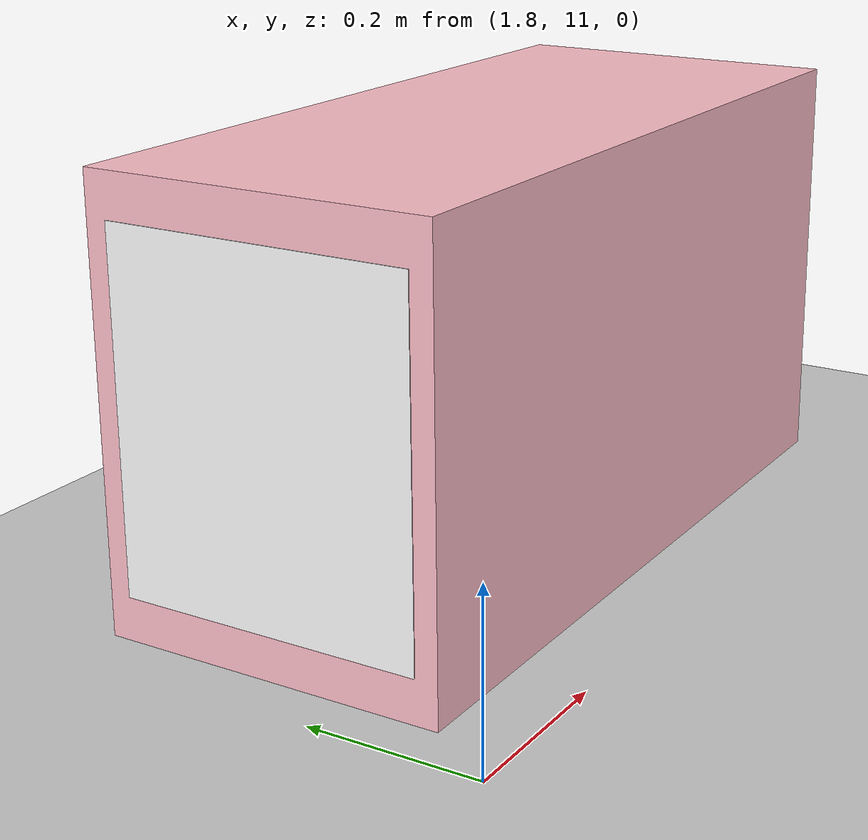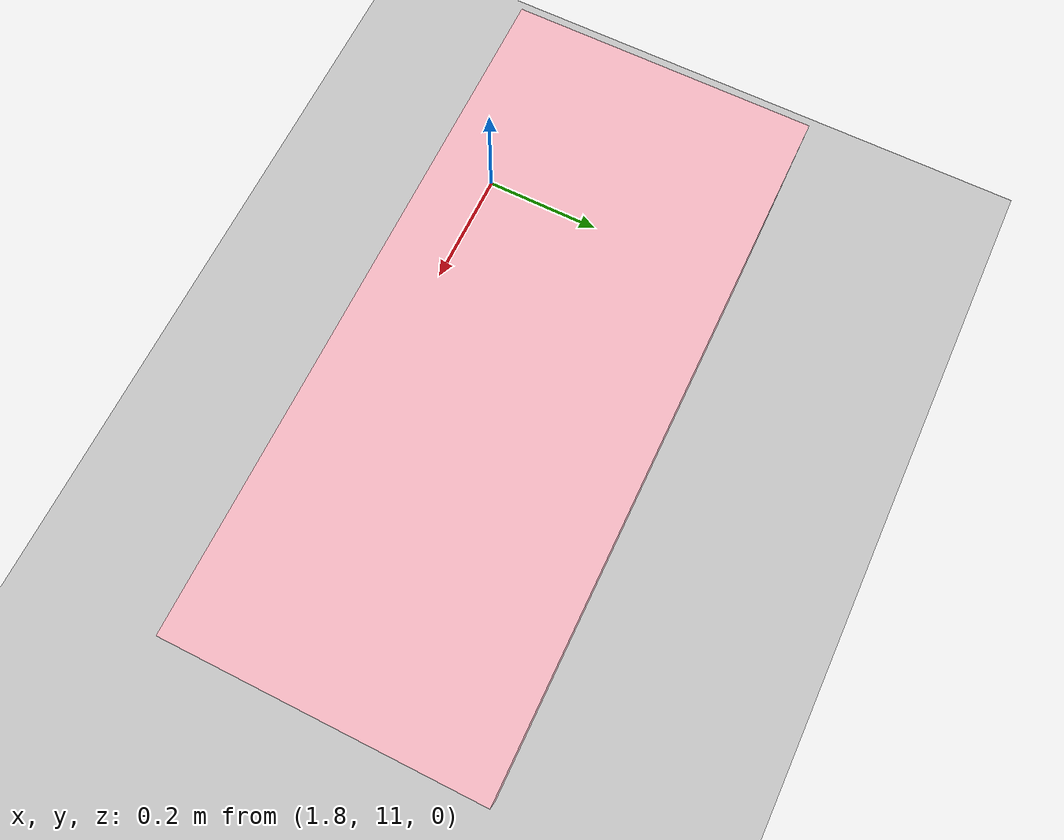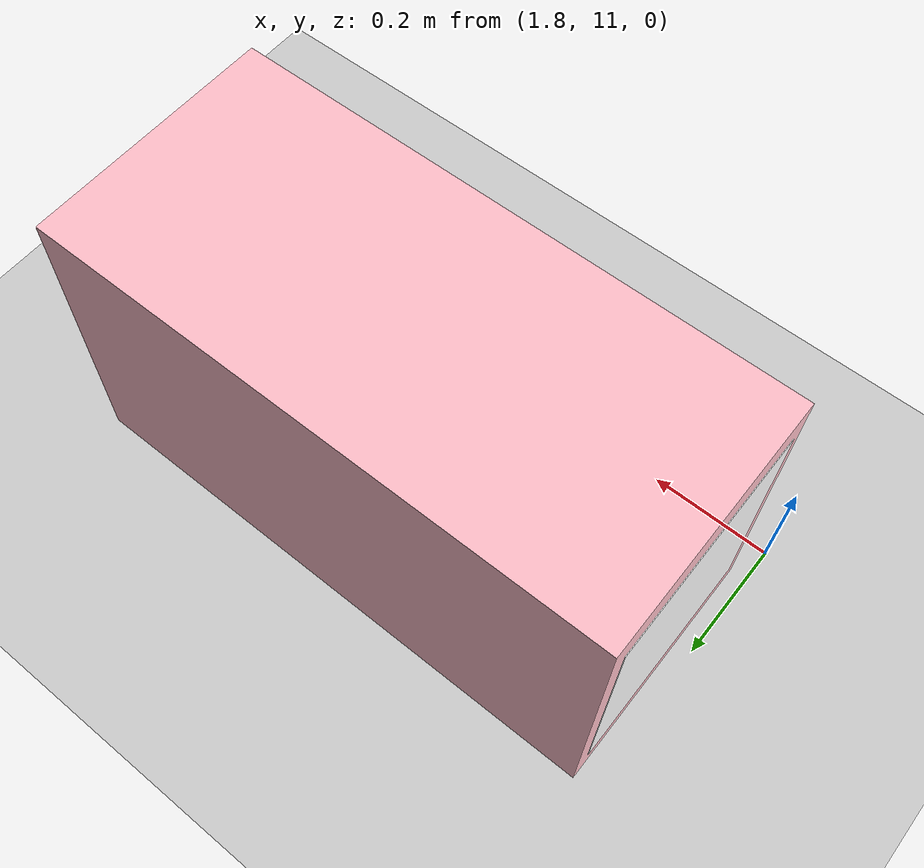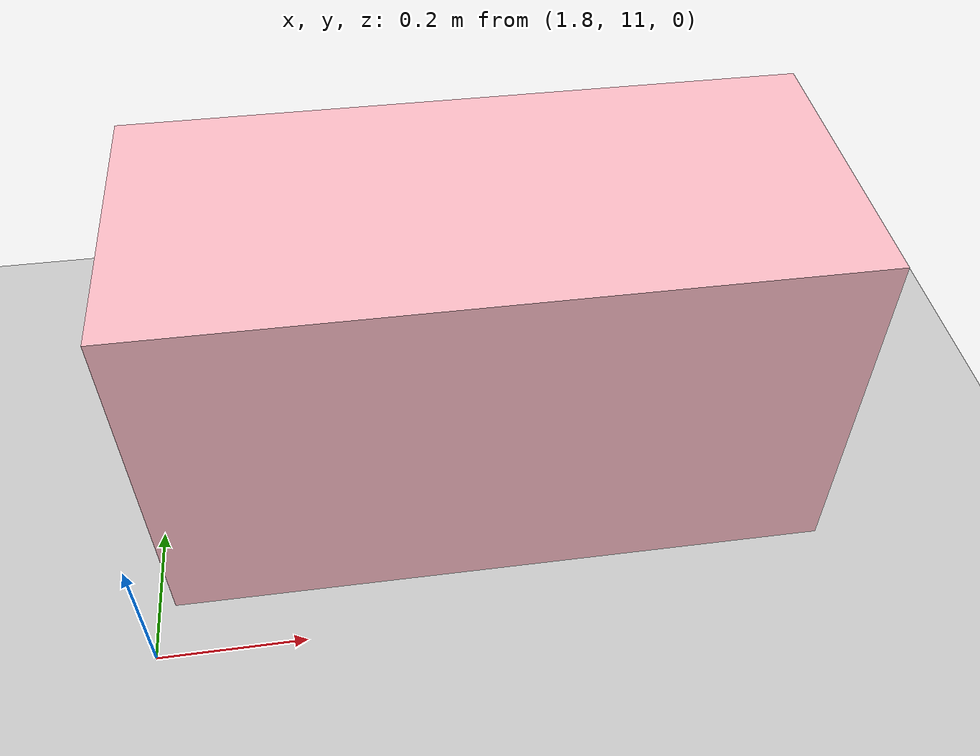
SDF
<sdf version="1.9">
 <world name="pig_pen_16units_world">
  <model name="ground_plane">
   <static>true</static>
   <link name="link">
    <collision name="collision">
     <geometry><plane><normal>0 0 1</normal><size>30 30</size></plane></geometry>
     <surface><friction><ode><mu>1.0</mu><mu2>1.0</mu2></ode></friction></surface>
    </collision>
    <visual name="visual">
     <geometry><plane><normal>0 0 1</normal><size>30 30</size></plane></geometry>
     <material>
      <ambient>0.8 0.8 0.8 1</ambient>
      <diffuse>0.8 0.8 0.8 1</diffuse>
      <specular>0.2 0.2 0.2 1</specular>
     </material>
    </visual>
   </link>
  </model>
  <include><uri>model://farm_pig</uri><name>pig15_a</name><pose>2.275 11.265 0.27 0 0 3.1416</pose></include>
 </world>
</sdf>
